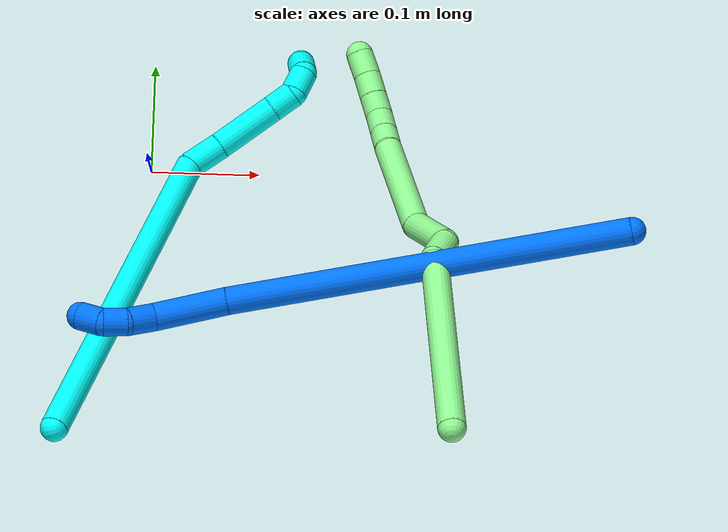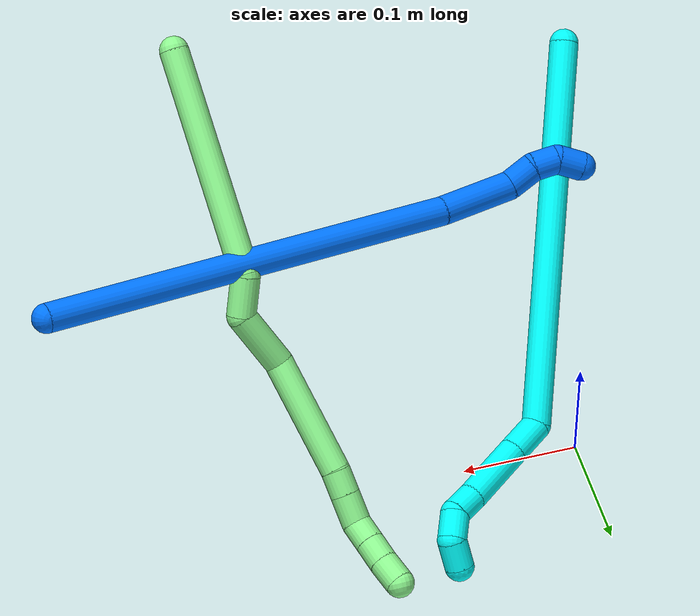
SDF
<sdf version="1.7">
 <world name="default">
  <model name="photoneo_s_sensor">
   <static>1</static>
   <pose>0 0 2 1.57079 1.57079 3.14159</pose>
   <link name="link">
    <inertial><mass>0.1</mass></inertial>
    <sensor name="sensor" type="depth">
     <update_rate>30</update_rate>
     <camera>
      <horizontal_fov>1.22</horizontal_fov>
      <image><width>1920</width><height>1200</height><format>B8G8R8</format></image>
      <clip><near>0.1</near><far>4</far></clip>
      <depth_camera><output>points</output></depth_camera>
     </camera>
     <plugin name="camera_plugin" filename="libgazebo_ros_depth_camera.so">
      <baseline>0.2</baseline>
      <alwaysOn>1</alwaysOn>
      <updateRate>0.0</updateRate>
      <cameraName>camera_ir</cameraName>
      <imageTopicName>/camera/color/image_raw</imageTopicName>
      <cameraInfoTopicName>/camera/color/camera_info</cameraInfoTopicName>
      <depthImageTopicName>/camera/depth/image_raw</depthImageTopicName>
      <depthImageCameraInfoTopicName>/camera/depth/camera_info</depthImageCameraInfoTopicName>
      <pointCloudTopicName>/camera/depth/points</pointCloudTopicName>
      <frameName>fr_optical</frameName>
      <pointCloudCutoff>0.1</pointCloudCutoff>
      <pointCloudCutoffMax>2.0</pointCloudCutoffMax>
      <distortionK1>0</distortionK1>
      <distortionK2>0</distortionK2>
      <distortionK3>0</distortionK3>
      <distortionT1>0</distortionT1>
      <distortionT2>0</distortionT2>
      <CxPrime>0</CxPrime>
      <Cx>0</Cx>
      <Cy>0</Cy>
      <focalLength>0</focalLength>
      <hackBaseline>0</hackBaseline>
     </plugin>
    </sensor>
   </link>
  </model>
  <model name="bin">
   <static>1</static>
   <link name="bottom">
    <collision name="collision-bottom">
     <pose>0 0 -0.01 0 -0 0</pose>
     <geometry><box><size>0.8 0.6 0.02</size></box></geometry>
     <surface>
      <friction><ode><mu>100</mu><mu2>100</mu2></ode></friction>
      <contact><collide_bitmask>65535</collide_bitmask></contact>
     </surface>
    </collision>
   </link>
   <link name="west_wall">
    <collision name="collision-west_wall">
     <pose>-0.41 0 0.1 0 -0 0</pose>
     <geometry><box><size>0.02 0.6 0.2</size></box></geometry>
     <surface>
      <friction><ode><mu>100</mu><mu2>100</mu2></ode></friction>
      <contact><collide_bitmask>65535</collide_bitmask></contact>
     </surface>
    </collision>
   </link>
   <link name="east_wall">
    <collision name="collision-east_wall">
     <pose>0.41 0 0.1 0 -0 0</pose>
     <geometry><box><size>0.02 0.6 0.2</size></box></geometry>
     <surface>
      <friction><ode><mu>100</mu><mu2>100</mu2></ode></friction>
      <contact><collide_bitmask>65535</collide_bitmask></contact>
     </surface>
    </collision>
   </link>
   <link name="south_wall">
    <collision name="collision-south_wall">
     <pose>0 -0.31 0.1 0 -0 0</pose>
     <geometry><box><size>0.8 0.02 0.2</size></box></geometry>
     <surface>
      <friction><ode><mu>100</mu><mu2>100</mu2></ode></friction>
      <contact><collide_bitmask>65535</collide_bitmask></contact>
     </surface>
    </collision>
   </link>
   <link name="north_wall">
    <collision name="collision-north_wall">
     <pose>0 0.31 0.1 0 -0 0</pose>
     <geometry><box><size>0.8 0.02 0.2</size></box></geometry>
     <surface>
      <friction><ode><mu>100</mu><mu2>100</mu2></ode></friction>
      <contact><collide_bitmask>65535</collide_bitmask></contact>
     </surface>
    </collision>
   </link>
  </model>
  <model name="3">
   <static>0</static>
   <link name="3">
    <collision name="collision-cylinder-e_1_1_4">
     <pose>0.124914 0.109505 -0.021065 -1.76084 0.842023 -0.993568</pose>
     <geometry><cylinder><radius>0.0125</radius><length>0.334895</length></cylinder></geometry>
     <surface>
      <friction><ode><mu>1.16</mu><mu2>1.16</mu2><slip1>0</slip1><slip2>0</slip2></ode></friction>
      <contact><ode><kp>1e+06</kp><kd>1</kd><max_vel>0</max_vel><min_depth>0.001</min_depth></ode></contact>
     </surface>
    </collision>
    <visual name="visual-cylinder-e_1_1_4">
     <pose>0.124914 0.109505 -0.021065 -1.76084 0.842023 -0.993568</pose>
     <geometry><cylinder><radius>0.0125</radius><length>0.334895</length></cylinder></geometry>
     <material><ambient>0.003922 1 0.996078 1</ambient></material>
    </visual>
    <collision name="collision-cylinder-e_2_4_5">
     <pose>0.257768 0.226861 -0.054633 -2.5809 0.49336 -1.43716</pose>
     <geometry><cylinder><radius>0.0125</radius><length>0.033527</length></cylinder></geometry>
     <surface>
      <friction><ode><mu>1.16</mu><mu2>1.16</mu2><slip1>0</slip1><slip2>0</slip2></ode></friction>
      <contact><ode><kp>1e+06</kp><kd>1</kd><max_vel>0</max_vel><min_depth>0.001</min_depth></ode></contact>
     </surface>
    </collision>
    <visual name="visual-cylinder-e_2_4_5">
     <pose>0.257768 0.226861 -0.054633 -2.5809 0.49336 -1.43716</pose>
     <geometry><cylinder><radius>0.0125</radius><length>0.033527</length></cylinder></geometry>
     <material><ambient>0.003922 1 0.996078 1</ambient></material>
    </visual>
    <collision name="collision-cylinder-e_3_5_6">
     <pose>0.280607 0.247173 -0.089818 -2.63921 0.522413 -1.61165</pose>
     <geometry><cylinder><radius>0.0125</radius><length>0.059723</length></cylinder></geometry>
     <surface>
      <friction><ode><mu>1.16</mu><mu2>1.16</mu2><slip1>0</slip1><slip2>0</slip2></ode></friction>
      <contact><ode><kp>1e+06</kp><kd>1</kd><max_vel>0</max_vel><min_depth>0.001</min_depth></ode></contact>
     </surface>
    </collision>
    <visual name="visual-cylinder-e_3_5_6">
     <pose>0.280607 0.247173 -0.089818 -2.63921 0.522413 -1.61165</pose>
     <geometry><cylinder><radius>0.0125</radius><length>0.059723</length></cylinder></geometry>
     <material><ambient>0.003922 1 0.996078 1</ambient></material>
    </visual>
    <collision name="collision-cylinder-e_4_6_7">
     <pose>0.301317 0.263539 -0.122234 -2.76007 0.505865 -1.85826</pose>
     <geometry><cylinder><radius>0.0125</radius><length>0.023982</length></cylinder></geometry>
     <surface>
      <friction><ode><mu>1.16</mu><mu2>1.16</mu2><slip1>0</slip1><slip2>0</slip2></ode></friction>
      <contact><ode><kp>1e+06</kp><kd>1</kd><max_vel>0</max_vel><min_depth>0.001</min_depth></ode></contact>
     </surface>
    </collision>
    <visual name="visual-cylinder-e_4_6_7">
     <pose>0.301317 0.263539 -0.122234 -2.76007 0.505865 -1.85826</pose>
     <geometry><cylinder><radius>0.0125</radius><length>0.023982</length></cylinder></geometry>
     <material><ambient>0.003922 1 0.996078 1</ambient></material>
    </visual>
    <collision name="collision-cylinder-e_5_7_8">
     <pose>0.316769 0.273679 -0.135184 -2.04696 0.941812 -1.39191</pose>
     <geometry><cylinder><radius>0.0125</radius><length>0.023846</length></cylinder></geometry>
     <surface>
      <friction><ode><mu>1.16</mu><mu2>1.16</mu2><slip1>0</slip1><slip2>0</slip2></ode></friction>
      <contact><ode><kp>1e+06</kp><kd>1</kd><max_vel>0</max_vel><min_depth>0.001</min_depth></ode></contact>
     </surface>
    </collision>
    <visual name="visual-cylinder-e_5_7_8">
     <pose>0.316769 0.273679 -0.135184 -2.04696 0.941812 -1.39191</pose>
     <geometry><cylinder><radius>0.0125</radius><length>0.023846</length></cylinder></geometry>
     <material><ambient>0.003922 1 0.996078 1</ambient></material>
    </visual>
    <collision name="collision-cylinder-e_6_8_2">
     <pose>0.333341 0.288412 -0.133495 -1.04736 0.614921 -0.362691</pose>
     <geometry><cylinder><radius>0.0125</radius><length>0.024027</length></cylinder></geometry>
     <surface>
      <friction><ode><mu>1.16</mu><mu2>1.16</mu2><slip1>0</slip1><slip2>0</slip2></ode></friction>
      <contact><ode><kp>1e+06</kp><kd>1</kd><max_vel>0</max_vel><min_depth>0.001</min_depth></ode></contact>
     </surface>
    </collision>
    <visual name="visual-cylinder-e_6_8_2">
     <pose>0.333341 0.288412 -0.133495 -1.04736 0.614921 -0.362691</pose>
     <geometry><cylinder><radius>0.0125</radius><length>0.024027</length></cylinder></geometry>
     <material><ambient>0.003922 1 0.996078 1</ambient></material>
    </visual>
    <collision name="collision-sphere-2">
     <pose>0.340271 0.296911 -0.12859 0 -0 0</pose>
     <geometry><sphere><radius>0.0125</radius></sphere></geometry>
     <surface>
      <friction><ode><mu>1.16</mu><mu2>1.16</mu2><slip1>0</slip1><slip2>0</slip2></ode></friction>
      <contact><ode><kp>1e+06</kp><kd>1</kd><max_vel>0</max_vel><min_depth>0.001</min_depth></ode></contact>
     </surface>
    </collision>
    <visual name="visual-sphere-2">
     <pose>0.340271 0.296911 -0.12859 0 -0 0</pose>
     <geometry><sphere><radius>0.0125</radius></sphere></geometry>
     <material><ambient>0.003922 1 0.996078 1</ambient></material>
    </visual>
    <collision name="collision-sphere-4">
     <pose>0.249829 0.21901 -0.04213 0 -0 0</pose>
     <geometry><sphere><radius>0.0125</radius></sphere></geometry>
     <surface>
      <friction><ode><mu>1.16</mu><mu2>1.16</mu2><slip1>0</slip1><slip2>0</slip2></ode></friction>
      <contact><ode><kp>1e+06</kp><kd>1</kd><max_vel>0</max_vel><min_depth>0.001</min_depth></ode></contact>
     </surface>
    </collision>
    <visual name="visual-sphere-4">
     <pose>0.249829 0.21901 -0.04213 0 -0 0</pose>
     <geometry><sphere><radius>0.0125</radius></sphere></geometry>
     <material><ambient>0.003922 1 0.996078 1</ambient></material>
    </visual>
    <collision name="collision-sphere-1">
     <geometry><sphere><radius>0.0125</radius></sphere></geometry>
     <surface>
      <friction><ode><mu>1.16</mu><mu2>1.16</mu2><slip1>0</slip1><slip2>0</slip2></ode></friction>
      <contact><ode><kp>1e+06</kp><kd>1</kd><max_vel>0</max_vel><min_depth>0.001</min_depth></ode></contact>
     </surface>
    </collision>
    <visual name="visual-sphere-1">
     <geometry><sphere><radius>0.0125</radius></sphere></geometry>
     <material><ambient>0.003922 1 0.996078 1</ambient></material>
    </visual>
    <collision name="collision-sphere-8">
     <pose>0.32641 0.279913 -0.1384 0 -0 0</pose>
     <geometry><sphere><radius>0.0125</radius></sphere></geometry>
     <surface>
      <friction><ode><mu>1.16</mu><mu2>1.16</mu2><slip1>0</slip1><slip2>0</slip2></ode></friction>
      <contact><ode><kp>1e+06</kp><kd>1</kd><max_vel>0</max_vel><min_depth>0.001</min_depth></ode></contact>
     </surface>
    </collision>
    <visual name="visual-sphere-8">
     <pose>0.32641 0.279913 -0.1384 0 -0 0</pose>
     <geometry><sphere><radius>0.0125</radius></sphere></geometry>
     <material><ambient>0.003922 1 0.996078 1</ambient></material>
    </visual>
    <collision name="collision-sphere-5">
     <pose>0.265707 0.234712 -0.067137 0 -0 0</pose>
     <geometry><sphere><radius>0.0125</radius></sphere></geometry>
     <surface>
      <friction><ode><mu>1.16</mu><mu2>1.16</mu2><slip1>0</slip1><slip2>0</slip2></ode></friction>
      <contact><ode><kp>1e+06</kp><kd>1</kd><max_vel>0</max_vel><min_depth>0.001</min_depth></ode></contact>
     </surface>
    </collision>
    <visual name="visual-sphere-5">
     <pose>0.265707 0.234712 -0.067137 0 -0 0</pose>
     <geometry><sphere><radius>0.0125</radius></sphere></geometry>
     <material><ambient>0.003922 1 0.996078 1</ambient></material>
    </visual>
    <collision name="collision-sphere-6">
     <pose>0.295507 0.259634 -0.112499 0 -0 0</pose>
     <geometry><sphere><radius>0.0125</radius></sphere></geometry>
     <surface>
      <friction><ode><mu>1.16</mu><mu2>1.16</mu2><slip1>0</slip1><slip2>0</slip2></ode></friction>
      <contact><ode><kp>1e+06</kp><kd>1</kd><max_vel>0</max_vel><min_depth>0.001</min_depth></ode></contact>
     </surface>
    </collision>
    <visual name="visual-sphere-6">
     <pose>0.295507 0.259634 -0.112499 0 -0 0</pose>
     <geometry><sphere><radius>0.0125</radius></sphere></geometry>
     <material><ambient>0.003922 1 0.996078 1</ambient></material>
    </visual>
    <collision name="collision-sphere-7">
     <pose>0.307128 0.267445 -0.131969 0 -0 0</pose>
     <geometry><sphere><radius>0.0125</radius></sphere></geometry>
     <surface>
      <friction><ode><mu>1.16</mu><mu2>1.16</mu2><slip1>0</slip1><slip2>0</slip2></ode></friction>
      <contact><ode><kp>1e+06</kp><kd>1</kd><max_vel>0</max_vel><min_depth>0.001</min_depth></ode></contact>
     </surface>
    </collision>
    <visual name="visual-sphere-7">
     <pose>0.307128 0.267445 -0.131969 0 -0 0</pose>
     <geometry><sphere><radius>0.0125</radius></sphere></geometry>
     <material><ambient>0.003922 1 0.996078 1</ambient></material>
    </visual>
    <inertial>
     <pose>0.180046 0.157633 -0.047226 0 -0 0</pose>
     <mass>0.5</mass>
     <inertia>
      <ixx>-0.000609</ixx>
      <ixy>0</ixy>
      <ixz>0</ixz>
      <iyy>-0.000141</iyy>
      <iyz>0</iyz>
      <izz>-0.00444</izz>
     </inertia>
    </inertial>
   </link>
   <pose>-0.065135 -0.265795 0.218138 -2.04579 0.004142 1.70986</pose>
  </model>
  <model name="13">
   <static>0</static>
   <link name="13">
    <collision name="collision-cylinder-e_1_1_4">
     <pose>0.006171 0.006863 -0.098301 -3.07188 0.062545 -1.46249</pose>
     <geometry><cylinder><radius>0.0125</radius><length>0.197466</length></cylinder></geometry>
     <surface>
      <friction><ode><mu>1.16</mu><mu2>1.16</mu2><slip1>0</slip1><slip2>0</slip2></ode></friction>
      <contact><ode><kp>1e+06</kp><kd>1</kd><max_vel>0</max_vel><min_depth>0.001</min_depth></ode></contact>
     </surface>
    </collision>
    <visual name="visual-cylinder-e_1_1_4">
     <pose>0.006171 0.006863 -0.098301 -3.07188 0.062545 -1.46249</pose>
     <geometry><cylinder><radius>0.0125</radius><length>0.197466</length></cylinder></geometry>
     <material><ambient>0.564706 0.984314 0.572549 1</ambient></material>
    </visual>
    <collision name="collision-cylinder-e_2_4_5">
     <pose>0.008113 0.008534 -0.212278 2.8217 -0.250697 -1.3262</pose>
     <geometry><cylinder><radius>0.0125</radius><length>0.034094</length></cylinder></geometry>
     <surface>
      <friction><ode><mu>1.16</mu><mu2>1.16</mu2><slip1>0</slip1><slip2>0</slip2></ode></friction>
      <contact><ode><kp>1e+06</kp><kd>1</kd><max_vel>0</max_vel><min_depth>0.001</min_depth></ode></contact>
     </surface>
    </collision>
    <visual name="visual-cylinder-e_2_4_5">
     <pose>0.008113 0.008534 -0.212278 2.8217 -0.250697 -1.3262</pose>
     <geometry><cylinder><radius>0.0125</radius><length>0.034094</length></cylinder></geometry>
     <material><ambient>0.564706 0.984314 0.572549 1</ambient></material>
    </visual>
    <collision name="collision-cylinder-e_3_5_6">
     <pose>-0.006646 0.015156 -0.249736 -2.64456 -0.401841 1.35264</pose>
     <geometry><cylinder><radius>0.0125</radius><length>0.053847</length></cylinder></geometry>
     <surface>
      <friction><ode><mu>1.16</mu><mu2>1.16</mu2><slip1>0</slip1><slip2>0</slip2></ode></friction>
      <contact><ode><kp>1e+06</kp><kd>1</kd><max_vel>0</max_vel><min_depth>0.001</min_depth></ode></contact>
     </surface>
    </collision>
    <visual name="visual-cylinder-e_3_5_6">
     <pose>-0.006646 0.015156 -0.249736 -2.64456 -0.401841 1.35264</pose>
     <geometry><cylinder><radius>0.0125</radius><length>0.053847</length></cylinder></geometry>
     <material><ambient>0.564706 0.984314 0.572549 1</ambient></material>
    </visual>
    <collision name="collision-cylinder-e_4_6_7">
     <pose>-0.015463 0.039523 -0.320847 -2.89244 0.03365 -0.267143</pose>
     <geometry><cylinder><radius>0.0125</radius><length>0.101863</length></cylinder></geometry>
     <surface>
      <friction><ode><mu>1.16</mu><mu2>1.16</mu2><slip1>0</slip1><slip2>0</slip2></ode></friction>
      <contact><ode><kp>1e+06</kp><kd>1</kd><max_vel>0</max_vel><min_depth>0.001</min_depth></ode></contact>
     </surface>
    </collision>
    <visual name="visual-cylinder-e_4_6_7">
     <pose>-0.015463 0.039523 -0.320847 -2.89244 0.03365 -0.267143</pose>
     <geometry><cylinder><radius>0.0125</radius><length>0.101863</length></cylinder></geometry>
     <material><ambient>0.564706 0.984314 0.572549 1</ambient></material>
    </visual>
    <collision name="collision-cylinder-e_5_7_8">
     <pose>-0.014583 0.053763 -0.380803 -2.98393 -0.077389 0.911385</pose>
     <geometry><cylinder><radius>0.0125</radius><length>0.02158</length></cylinder></geometry>
     <surface>
      <friction><ode><mu>1.16</mu><mu2>1.16</mu2><slip1>0</slip1><slip2>0</slip2></ode></friction>
      <contact><ode><kp>1e+06</kp><kd>1</kd><max_vel>0</max_vel><min_depth>0.001</min_depth></ode></contact>
     </surface>
    </collision>
    <visual name="visual-cylinder-e_5_7_8">
     <pose>-0.014583 0.053763 -0.380803 -2.98393 -0.077389 0.911385</pose>
     <geometry><cylinder><radius>0.0125</radius><length>0.02158</length></cylinder></geometry>
     <material><ambient>0.564706 0.984314 0.572549 1</ambient></material>
    </visual>
    <collision name="collision-cylinder-e_6_8_9">
     <pose>-0.016463 0.057501 -0.404464 -2.98572 -0.079053 0.937512</pose>
     <geometry><cylinder><radius>0.0125</radius><length>0.026478</length></cylinder></geometry>
     <surface>
      <friction><ode><mu>1.16</mu><mu2>1.16</mu2><slip1>0</slip1><slip2>0</slip2></ode></friction>
      <contact><ode><kp>1e+06</kp><kd>1</kd><max_vel>0</max_vel><min_depth>0.001</min_depth></ode></contact>
     </surface>
    </collision>
    <visual name="visual-cylinder-e_6_8_9">
     <pose>-0.016463 0.057501 -0.404464 -2.98572 -0.079053 0.937512</pose>
     <geometry><cylinder><radius>0.0125</radius><length>0.026478</length></cylinder></geometry>
     <material><ambient>0.564706 0.984314 0.572549 1</ambient></material>
    </visual>
    <collision name="collision-cylinder-e_7_9_10">
     <pose>-0.013298 0.062738 -0.426551 -2.80291 0.41355 -1.77387</pose>
     <geometry><cylinder><radius>0.0125</radius><length>0.020955</length></cylinder></geometry>
     <surface>
      <friction><ode><mu>1.16</mu><mu2>1.16</mu2><slip1>0</slip1><slip2>0</slip2></ode></friction>
      <contact><ode><kp>1e+06</kp><kd>1</kd><max_vel>0</max_vel><min_depth>0.001</min_depth></ode></contact>
     </surface>
    </collision>
    <visual name="visual-cylinder-e_7_9_10">
     <pose>-0.013298 0.062738 -0.426551 -2.80291 0.41355 -1.77387</pose>
     <geometry><cylinder><radius>0.0125</radius><length>0.020955</length></cylinder></geometry>
     <material><ambient>0.564706 0.984314 0.572549 1</ambient></material>
    </visual>
    <collision name="collision-cylinder-e_8_10_11">
     <pose>-0.004992 0.069033 -0.444663 -2.8113 0.403976 -1.7753</pose>
     <geometry><cylinder><radius>0.0125</radius><length>0.020839</length></cylinder></geometry>
     <surface>
      <friction><ode><mu>1.16</mu><mu2>1.16</mu2><slip1>0</slip1><slip2>0</slip2></ode></friction>
      <contact><ode><kp>1e+06</kp><kd>1</kd><max_vel>0</max_vel><min_depth>0.001</min_depth></ode></contact>
     </surface>
    </collision>
    <visual name="visual-cylinder-e_8_10_11">
     <pose>-0.004992 0.069033 -0.444663 -2.8113 0.403976 -1.7753</pose>
     <geometry><cylinder><radius>0.0125</radius><length>0.020839</length></cylinder></geometry>
     <material><ambient>0.564706 0.984314 0.572549 1</ambient></material>
    </visual>
    <collision name="collision-cylinder-e_9_11_2">
     <pose>0.003985 0.076128 -0.463271 -2.74584 0.440867 -1.68173</pose>
     <geometry><cylinder><radius>0.0125</radius><length>0.022877</length></cylinder></geometry>
     <surface>
      <friction><ode><mu>1.16</mu><mu2>1.16</mu2><slip1>0</slip1><slip2>0</slip2></ode></friction>
      <contact><ode><kp>1e+06</kp><kd>1</kd><max_vel>0</max_vel><min_depth>0.001</min_depth></ode></contact>
     </surface>
    </collision>
    <visual name="visual-cylinder-e_9_11_2">
     <pose>0.003985 0.076128 -0.463271 -2.74584 0.440867 -1.68173</pose>
     <geometry><cylinder><radius>0.0125</radius><length>0.022877</length></cylinder></geometry>
     <material><ambient>0.564706 0.984314 0.572549 1</ambient></material>
    </visual>
    <collision name="collision-sphere-2">
     <pose>0.008866 0.080116 -0.472816 0 -0 0</pose>
     <geometry><sphere><radius>0.0125</radius></sphere></geometry>
     <surface>
      <friction><ode><mu>1.16</mu><mu2>1.16</mu2><slip1>0</slip1><slip2>0</slip2></ode></friction>
      <contact><ode><kp>1e+06</kp><kd>1</kd><max_vel>0</max_vel><min_depth>0.001</min_depth></ode></contact>
     </surface>
    </collision>
    <visual name="visual-sphere-2">
     <pose>0.008866 0.080116 -0.472816 0 -0 0</pose>
     <geometry><sphere><radius>0.0125</radius></sphere></geometry>
     <material><ambient>0.564706 0.984314 0.572549 1</ambient></material>
    </visual>
    <collision name="collision-sphere-11">
     <pose>-0.000896 0.07214 -0.453726 0 -0 0</pose>
     <geometry><sphere><radius>0.0125</radius></sphere></geometry>
     <surface>
      <friction><ode><mu>1.16</mu><mu2>1.16</mu2><slip1>0</slip1><slip2>0</slip2></ode></friction>
      <contact><ode><kp>1e+06</kp><kd>1</kd><max_vel>0</max_vel><min_depth>0.001</min_depth></ode></contact>
     </surface>
    </collision>
    <visual name="visual-sphere-11">
     <pose>-0.000896 0.07214 -0.453726 0 -0 0</pose>
     <geometry><sphere><radius>0.0125</radius></sphere></geometry>
     <material><ambient>0.564706 0.984314 0.572549 1</ambient></material>
    </visual>
    <collision name="collision-sphere-10">
     <pose>-0.009087 0.065925 -0.4356 0 -0 0</pose>
     <geometry><sphere><radius>0.0125</radius></sphere></geometry>
     <surface>
      <friction><ode><mu>1.16</mu><mu2>1.16</mu2><slip1>0</slip1><slip2>0</slip2></ode></friction>
      <contact><ode><kp>1e+06</kp><kd>1</kd><max_vel>0</max_vel><min_depth>0.001</min_depth></ode></contact>
     </surface>
    </collision>
    <visual name="visual-sphere-10">
     <pose>-0.009087 0.065925 -0.4356 0 -0 0</pose>
     <geometry><sphere><radius>0.0125</radius></sphere></geometry>
     <material><ambient>0.564706 0.984314 0.572549 1</ambient></material>
    </visual>
    <collision name="collision-sphere-9">
     <pose>-0.017508 0.05955 -0.417502 0 -0 0</pose>
     <geometry><sphere><radius>0.0125</radius></sphere></geometry>
     <surface>
      <friction><ode><mu>1.16</mu><mu2>1.16</mu2><slip1>0</slip1><slip2>0</slip2></ode></friction>
      <contact><ode><kp>1e+06</kp><kd>1</kd><max_vel>0</max_vel><min_depth>0.001</min_depth></ode></contact>
     </surface>
    </collision>
    <visual name="visual-sphere-9">
     <pose>-0.017508 0.05955 -0.417502 0 -0 0</pose>
     <geometry><sphere><radius>0.0125</radius></sphere></geometry>
     <material><ambient>0.564706 0.984314 0.572549 1</ambient></material>
    </visual>
    <collision name="collision-sphere-4">
     <pose>0.012342 0.013727 -0.196602 0 -0 0</pose>
     <geometry><sphere><radius>0.0125</radius></sphere></geometry>
     <surface>
      <friction><ode><mu>1.16</mu><mu2>1.16</mu2><slip1>0</slip1><slip2>0</slip2></ode></friction>
      <contact><ode><kp>1e+06</kp><kd>1</kd><max_vel>0</max_vel><min_depth>0.001</min_depth></ode></contact>
     </surface>
    </collision>
    <visual name="visual-sphere-4">
     <pose>0.012342 0.013727 -0.196602 0 -0 0</pose>
     <geometry><sphere><radius>0.0125</radius></sphere></geometry>
     <material><ambient>0.564706 0.984314 0.572549 1</ambient></material>
    </visual>
    <collision name="collision-sphere-1">
     <geometry><sphere><radius>0.0125</radius></sphere></geometry>
     <surface>
      <friction><ode><mu>1.16</mu><mu2>1.16</mu2><slip1>0</slip1><slip2>0</slip2></ode></friction>
      <contact><ode><kp>1e+06</kp><kd>1</kd><max_vel>0</max_vel><min_depth>0.001</min_depth></ode></contact>
     </surface>
    </collision>
    <visual name="visual-sphere-1">
     <geometry><sphere><radius>0.0125</radius></sphere></geometry>
     <material><ambient>0.564706 0.984314 0.572549 1</ambient></material>
    </visual>
    <collision name="collision-sphere-8">
     <pose>-0.015417 0.055452 -0.391427 0 -0 0</pose>
     <geometry><sphere><radius>0.0125</radius></sphere></geometry>
     <surface>
      <friction><ode><mu>1.16</mu><mu2>1.16</mu2><slip1>0</slip1><slip2>0</slip2></ode></friction>
      <contact><ode><kp>1e+06</kp><kd>1</kd><max_vel>0</max_vel><min_depth>0.001</min_depth></ode></contact>
     </surface>
    </collision>
    <visual name="visual-sphere-8">
     <pose>-0.015417 0.055452 -0.391427 0 -0 0</pose>
     <geometry><sphere><radius>0.0125</radius></sphere></geometry>
     <material><ambient>0.564706 0.984314 0.572549 1</ambient></material>
    </visual>
    <collision name="collision-sphere-5">
     <pose>0.003884 0.003341 -0.227955 0 -0 0</pose>
     <geometry><sphere><radius>0.0125</radius></sphere></geometry>
     <surface>
      <friction><ode><mu>1.16</mu><mu2>1.16</mu2><slip1>0</slip1><slip2>0</slip2></ode></friction>
      <contact><ode><kp>1e+06</kp><kd>1</kd><max_vel>0</max_vel><min_depth>0.001</min_depth></ode></contact>
     </surface>
    </collision>
    <visual name="visual-sphere-5">
     <pose>0.003884 0.003341 -0.227955 0 -0 0</pose>
     <geometry><sphere><radius>0.0125</radius></sphere></geometry>
     <material><ambient>0.564706 0.984314 0.572549 1</ambient></material>
    </visual>
    <collision name="collision-sphere-6">
     <pose>-0.017176 0.026971 -0.271516 0 -0 0</pose>
     <geometry><sphere><radius>0.0125</radius></sphere></geometry>
     <surface>
      <friction><ode><mu>1.16</mu><mu2>1.16</mu2><slip1>0</slip1><slip2>0</slip2></ode></friction>
      <contact><ode><kp>1e+06</kp><kd>1</kd><max_vel>0</max_vel><min_depth>0.001</min_depth></ode></contact>
     </surface>
    </collision>
    <visual name="visual-sphere-6">
     <pose>-0.017176 0.026971 -0.271516 0 -0 0</pose>
     <geometry><sphere><radius>0.0125</radius></sphere></geometry>
     <material><ambient>0.564706 0.984314 0.572549 1</ambient></material>
    </visual>
    <collision name="collision-sphere-7">
     <pose>-0.013749 0.052074 -0.370178 0 -0 0</pose>
     <geometry><sphere><radius>0.0125</radius></sphere></geometry>
     <surface>
      <friction><ode><mu>1.16</mu><mu2>1.16</mu2><slip1>0</slip1><slip2>0</slip2></ode></friction>
      <contact><ode><kp>1e+06</kp><kd>1</kd><max_vel>0</max_vel><min_depth>0.001</min_depth></ode></contact>
     </surface>
    </collision>
    <visual name="visual-sphere-7">
     <pose>-0.013749 0.052074 -0.370178 0 -0 0</pose>
     <geometry><sphere><radius>0.0125</radius></sphere></geometry>
     <material><ambient>0.564706 0.984314 0.572549 1</ambient></material>
    </visual>
    <inertial>
     <pose>-0.00296 0.027332 -0.241017 0 -0 0</pose>
     <mass>0.5</mass>
     <inertia>
      <ixx>-0.000495</ixx>
      <ixy>0</ixy>
      <ixz>0</ixz>
      <iyy>-0.000809</iyy>
      <iyz>0</iyz>
      <izz>-0.000151</izz>
     </inertia>
    </inertial>
   </link>
   <pose>0.279403 -0.264519 0.300432 0.094222 -0.899486 1.47753</pose>
  </model>
  <model name="14">
   <static>0</static>
   <link name="14">
    <collision name="collision-cylinder-e_1_1_4">
     <pose>-0.180391 0.01222 -0.016233 -2.49629 -1.45863 2.42562</pose>
     <geometry><cylinder><radius>0.0125</radius><length>0.363064</length></cylinder></geometry>
     <surface>
      <friction><ode><mu>1.16</mu><mu2>1.16</mu2><slip1>0</slip1><slip2>0</slip2></ode></friction>
      <contact><ode><kp>1e+06</kp><kd>1</kd><max_vel>0</max_vel><min_depth>0.001</min_depth></ode></contact>
     </surface>
    </collision>
    <visual name="visual-cylinder-e_1_1_4">
     <pose>-0.180391 0.01222 -0.016233 -2.49629 -1.45863 2.42562</pose>
     <geometry><cylinder><radius>0.0125</radius><length>0.363064</length></cylinder></geometry>
     <material><ambient>0 0.462745 1 1</ambient></material>
    </visual>
    <collision name="collision-cylinder-e_2_4_5">
     <pose>-0.393664 0.029733 -0.035136 -2.03806 -1.39244 1.87208</pose>
     <geometry><cylinder><radius>0.0125</radius><length>0.066822</length></cylinder></geometry>
     <surface>
      <friction><ode><mu>1.16</mu><mu2>1.16</mu2><slip1>0</slip1><slip2>0</slip2></ode></friction>
      <contact><ode><kp>1e+06</kp><kd>1</kd><max_vel>0</max_vel><min_depth>0.001</min_depth></ode></contact>
     </surface>
    </collision>
    <visual name="visual-cylinder-e_2_4_5">
     <pose>-0.393664 0.029733 -0.035136 -2.03806 -1.39244 1.87208</pose>
     <geometry><cylinder><radius>0.0125</radius><length>0.066822</length></cylinder></geometry>
     <material><ambient>0 0.462745 1 1</ambient></material>
    </visual>
    <collision name="collision-cylinder-e_3_5_6">
     <pose>-0.436903 0.04165 -0.041478 -2.07696 -0.939361 1.42248</pose>
     <geometry><cylinder><radius>0.0125</radius><length>0.025665</length></cylinder></geometry>
     <surface>
      <friction><ode><mu>1.16</mu><mu2>1.16</mu2><slip1>0</slip1><slip2>0</slip2></ode></friction>
      <contact><ode><kp>1e+06</kp><kd>1</kd><max_vel>0</max_vel><min_depth>0.001</min_depth></ode></contact>
     </surface>
    </collision>
    <visual name="visual-cylinder-e_3_5_6">
     <pose>-0.436903 0.04165 -0.041478 -2.07696 -0.939361 1.42248</pose>
     <geometry><cylinder><radius>0.0125</radius><length>0.025665</length></cylinder></geometry>
     <material><ambient>0 0.462745 1 1</ambient></material>
    </visual>
    <collision name="collision-cylinder-e_4_6_7">
     <pose>-0.457442 0.050244 -0.048561 -2.61813 -1.20175 2.39647</pose>
     <geometry><cylinder><radius>0.0125</radius><length>0.02183</length></cylinder></geometry>
     <surface>
      <friction><ode><mu>1.16</mu><mu2>1.16</mu2><slip1>0</slip1><slip2>0</slip2></ode></friction>
      <contact><ode><kp>1e+06</kp><kd>1</kd><max_vel>0</max_vel><min_depth>0.001</min_depth></ode></contact>
     </surface>
    </collision>
    <visual name="visual-cylinder-e_4_6_7">
     <pose>-0.457442 0.050244 -0.048561 -2.61813 -1.20175 2.39647</pose>
     <geometry><cylinder><radius>0.0125</radius><length>0.02183</length></cylinder></geometry>
     <material><ambient>0 0.462745 1 1</ambient></material>
    </visual>
    <collision name="collision-cylinder-e_5_7_2">
     <pose>-0.477488 0.047762 -0.055251 2.20606 -1.06008 -1.71864</pose>
     <geometry><cylinder><radius>0.0125</radius><length>0.022618</length></cylinder></geometry>
     <surface>
      <friction><ode><mu>1.16</mu><mu2>1.16</mu2><slip1>0</slip1><slip2>0</slip2></ode></friction>
      <contact><ode><kp>1e+06</kp><kd>1</kd><max_vel>0</max_vel><min_depth>0.001</min_depth></ode></contact>
     </surface>
    </collision>
    <visual name="visual-cylinder-e_5_7_2">
     <pose>-0.477488 0.047762 -0.055251 2.20606 -1.06008 -1.71864</pose>
     <geometry><cylinder><radius>0.0125</radius><length>0.022618</length></cylinder></geometry>
     <material><ambient>0 0.462745 1 1</ambient></material>
    </visual>
    <collision name="collision-sphere-2">
     <pose>-0.487354 0.043313 -0.058532 0 -0 0</pose>
     <geometry><sphere><radius>0.0125</radius></sphere></geometry>
     <surface>
      <friction><ode><mu>1.16</mu><mu2>1.16</mu2><slip1>0</slip1><slip2>0</slip2></ode></friction>
      <contact><ode><kp>1e+06</kp><kd>1</kd><max_vel>0</max_vel><min_depth>0.001</min_depth></ode></contact>
     </surface>
    </collision>
    <visual name="visual-sphere-2">
     <pose>-0.487354 0.043313 -0.058532 0 -0 0</pose>
     <geometry><sphere><radius>0.0125</radius></sphere></geometry>
     <material><ambient>0 0.462745 1 1</ambient></material>
    </visual>
    <collision name="collision-sphere-7">
     <pose>-0.467622 0.052212 -0.051971 0 -0 0</pose>
     <geometry><sphere><radius>0.0125</radius></sphere></geometry>
     <surface>
      <friction><ode><mu>1.16</mu><mu2>1.16</mu2><slip1>0</slip1><slip2>0</slip2></ode></friction>
      <contact><ode><kp>1e+06</kp><kd>1</kd><max_vel>0</max_vel><min_depth>0.001</min_depth></ode></contact>
     </surface>
    </collision>
    <visual name="visual-sphere-7">
     <pose>-0.467622 0.052212 -0.051971 0 -0 0</pose>
     <geometry><sphere><radius>0.0125</radius></sphere></geometry>
     <material><ambient>0 0.462745 1 1</ambient></material>
    </visual>
    <collision name="collision-sphere-6">
     <pose>-0.447261 0.048276 -0.045151 0 -0 0</pose>
     <geometry><sphere><radius>0.0125</radius></sphere></geometry>
     <surface>
      <friction><ode><mu>1.16</mu><mu2>1.16</mu2><slip1>0</slip1><slip2>0</slip2></ode></friction>
      <contact><ode><kp>1e+06</kp><kd>1</kd><max_vel>0</max_vel><min_depth>0.001</min_depth></ode></contact>
     </surface>
    </collision>
    <visual name="visual-sphere-6">
     <pose>-0.447261 0.048276 -0.045151 0 -0 0</pose>
     <geometry><sphere><radius>0.0125</radius></sphere></geometry>
     <material><ambient>0 0.462745 1 1</ambient></material>
    </visual>
    <collision name="collision-sphere-5">
     <pose>-0.426545 0.035025 -0.037806 0 -0 0</pose>
     <geometry><sphere><radius>0.0125</radius></sphere></geometry>
     <surface>
      <friction><ode><mu>1.16</mu><mu2>1.16</mu2><slip1>0</slip1><slip2>0</slip2></ode></friction>
      <contact><ode><kp>1e+06</kp><kd>1</kd><max_vel>0</max_vel><min_depth>0.001</min_depth></ode></contact>
     </surface>
    </collision>
    <visual name="visual-sphere-5">
     <pose>-0.426545 0.035025 -0.037806 0 -0 0</pose>
     <geometry><sphere><radius>0.0125</radius></sphere></geometry>
     <material><ambient>0 0.462745 1 1</ambient></material>
    </visual>
    <collision name="collision-sphere-1">
     <geometry><sphere><radius>0.0125</radius></sphere></geometry>
     <surface>
      <friction><ode><mu>1.16</mu><mu2>1.16</mu2><slip1>0</slip1><slip2>0</slip2></ode></friction>
      <contact><ode><kp>1e+06</kp><kd>1</kd><max_vel>0</max_vel><min_depth>0.001</min_depth></ode></contact>
     </surface>
    </collision>
    <visual name="visual-sphere-1">
     <geometry><sphere><radius>0.0125</radius></sphere></geometry>
     <material><ambient>0 0.462745 1 1</ambient></material>
    </visual>
    <collision name="collision-sphere-4">
     <pose>-0.360782 0.024441 -0.032466 0 -0 0</pose>
     <geometry><sphere><radius>0.0125</radius></sphere></geometry>
     <surface>
      <friction><ode><mu>1.16</mu><mu2>1.16</mu2><slip1>0</slip1><slip2>0</slip2></ode></friction>
      <contact><ode><kp>1e+06</kp><kd>1</kd><max_vel>0</max_vel><min_depth>0.001</min_depth></ode></contact>
     </surface>
    </collision>
    <visual name="visual-sphere-4">
     <pose>-0.360782 0.024441 -0.032466 0 -0 0</pose>
     <geometry><sphere><radius>0.0125</radius></sphere></geometry>
     <material><ambient>0 0.462745 1 1</ambient></material>
    </visual>
    <inertial>
     <pose>-0.247597 0.019339 -0.023231 0 -0 0</pose>
     <mass>0.5</mass>
     <inertia>
      <ixx>-7.8e-05</ixx>
      <ixy>0</ixy>
      <ixz>0</ixz>
      <iyy>0.004317</iyy>
      <iyz>0</iyz>
      <izz>0.00373</izz>
     </inertia>
    </inertial>
   </link>
   <pose>0.434449 -0.076439 0.2168 2.1433 -0.225665 0.22576</pose>
  </model>
 </world>
</sdf>
